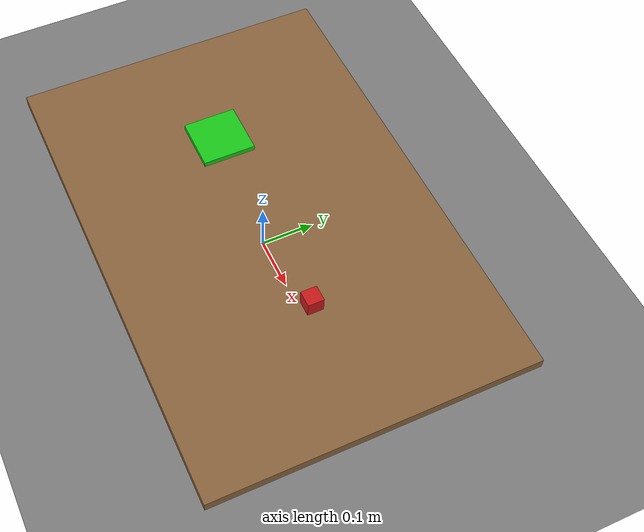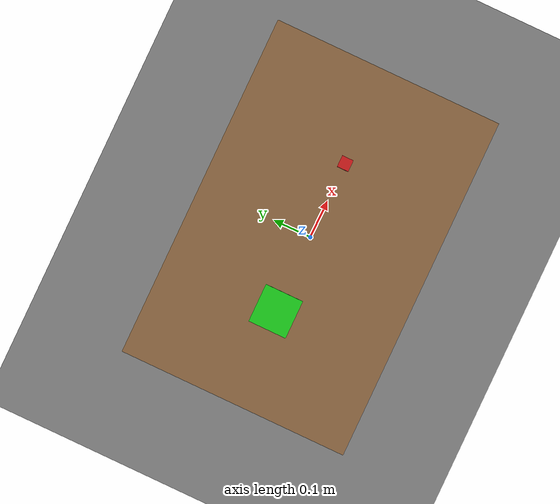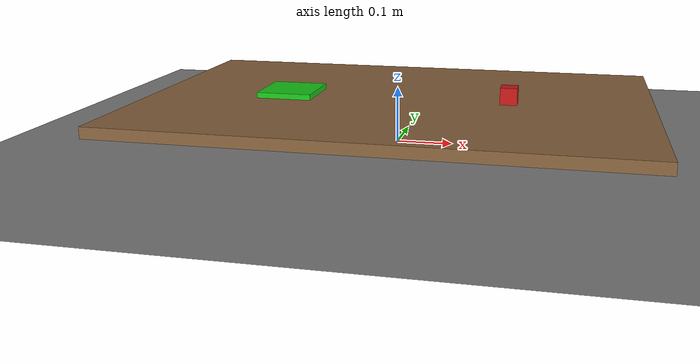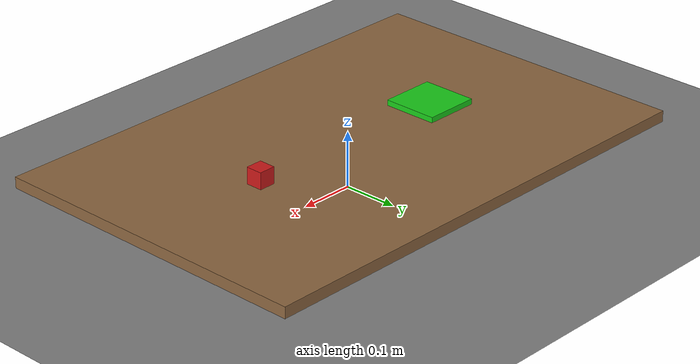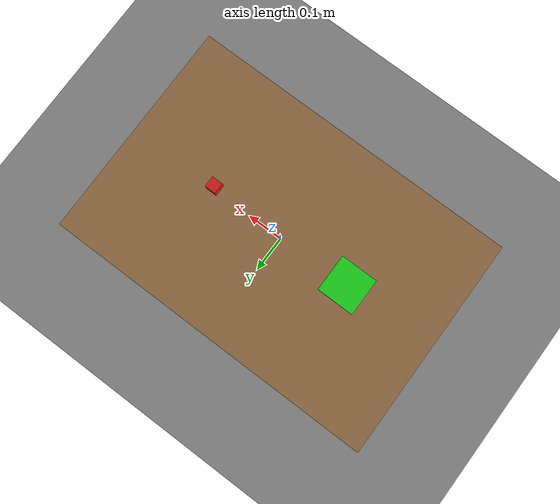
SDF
<?xml version="1.0" ?>
<sdf version="1.9">
  <world name="pick_place">

    <physics name="1ms" type="ode">
      <max_step_size>0.001</max_step_size>
      <real_time_factor>1</real_time_factor>
      <real_time_update_rate>1000</real_time_update_rate>
    </physics>

    <plugin filename="gz-sim-physics-system" name="gz::sim::systems::Physics"/>
    <plugin filename="gz-sim-user-commands-system" name="gz::sim::systems::UserCommands"/>
    <plugin filename="gz-sim-scene-broadcaster-system" name="gz::sim::systems::SceneBroadcaster"/>
    <plugin filename="gz-sim-sensors-system" name="gz::sim::systems::Sensors">
      <render_engine>ogre2</render_engine>
    </plugin>

    <light type="directional" name="sun">
      <cast_shadows>true</cast_shadows>
      <pose>0 0 10 0 0 0</pose>
      <diffuse>0.8 0.8 0.8 1</diffuse>
      <specular>0.2 0.2 0.2 1</specular>
      <direction>-0.5 0.5 -1</direction>
    </light>

    <model name="ground_plane">
      <static>true</static>
      <link name="link">
        <collision name="collision">
          <geometry>
            <plane><normal>0 0 1</normal><size>20 20</size></plane>
          </geometry>
        </collision>
        <visual name="visual">
          <geometry>
            <plane><normal>0 0 1</normal><size>20 20</size></plane>
          </geometry>
          <material>
            <ambient>0.5 0.5 0.5 1</ambient>
            <diffuse>0.5 0.5 0.5 1</diffuse>
          </material>
        </visual>
      </link>
    </model>

    <!-- Table: the arm and the pick/place objects all sit on top   -->
    <!-- of this. Top surface is at z = 0.08.                       -->

    <model name="table">
      <static>true</static>
      <pose>0 0 0 0 0 0</pose>
      <link name="link">
        <collision name="leg_collision">
          <pose>0 0 0.03 0 0 0</pose>
          <geometry><box><size>0.15 0.15 0.06</size></box></geometry>
        </collision>
        <visual name="leg_visual">
          <pose>0 0 0.03 0 0 0</pose>
          <geometry><box><size>0.15 0.15 0.06</size></box></geometry>
          <material>
            <ambient>0.35 0.25 0.15 1</ambient>
            <diffuse>0.35 0.25 0.15 1</diffuse>
          </material>
        </visual>
        <collision name="top_collision">
          <pose>0 0 0.07 0 0 0</pose>
          <geometry><box><size>0.9 0.6 0.02</size></box></geometry>
        </collision>
        <visual name="top_visual">
          <pose>0 0 0.07 0 0 0</pose>
          <geometry><box><size>0.9 0.6 0.02</size></box></geometry>
          <material>
            <ambient>0.55 0.4 0.25 1</ambient>
            <diffuse>0.55 0.4 0.25 1</diffuse>
          </material>
        </visual>
      </link>
    </model>

    <!-- Red cube to pick up (rests on the table top, z=0.08) -->
    <model name="red_cube">
      <static>false</static>
      <pose>0.20 0 0.095 0 0 0</pose>
      <link name="link">
        <inertial>
          <mass>0.02</mass>
          <inertia>
            <ixx>3e-6</ixx>
            <ixy>0</ixy>
            <ixz>0</ixz>
            <iyy>3e-6</iyy>
            <iyz>0</iyz>
            <izz>3e-6</izz>
          </inertia>
        </inertial>
        <collision name="collision">
          <geometry><box><size>0.03 0.03 0.03</size></box></geometry>
          <surface>
            <friction>
              <ode>
                <mu>1.2</mu>
                <mu2>1.2</mu2>
              </ode>
            </friction>
          </surface>
        </collision>
        <visual name="visual">
          <geometry><box><size>0.03 0.03 0.03</size></box></geometry>
          <material>
            <ambient>0.8 0.1 0.1 1</ambient>
            <diffuse>0.8 0.1 0.1 1</diffuse>
          </material>
        </visual>
      </link>
    </model>

    <!-- Green placement pad (on the table top, z=0.08) -->
    <model name="green_pad">
      <static>true</static>
      <pose>-0.20 0 0.085 0 0 0</pose>
      <link name="link">
        <collision name="collision">
          <geometry><box><size>0.10 0.10 0.01</size></box></geometry>
        </collision>
        <visual name="visual">
          <geometry><box><size>0.10 0.10 0.01</size></box></geometry>
          <material>
            <ambient>0.1 0.8 0.1 1</ambient>
            <diffuse>0.1 0.8 0.1 1</diffuse>
          </material>
        </visual>
      </link>
    </model>

    <!-- Overhead camera: publishes /image, bridged to ROS by gazebo.launch.py -->
    <model name="overhead_camera">
      <static>true</static>
      <pose>0 0 1.2 0 1.5708 0</pose>
      <link name="link">
        <sensor name="camera" type="camera">
          <always_on>1</always_on>
          <update_rate>30</update_rate>
          <topic>image</topic>
          <camera>
            <horizontal_fov>1.047</horizontal_fov>
            <image>
              <width>640</width>
              <height>480</height>
              <format>R8G8B8</format>
            </image>
            <clip>
              <near>0.1</near>
              <far>100</far>
            </clip>
          </camera>
        </sensor>
      </link>
    </model>

  </world>
</sdf>
